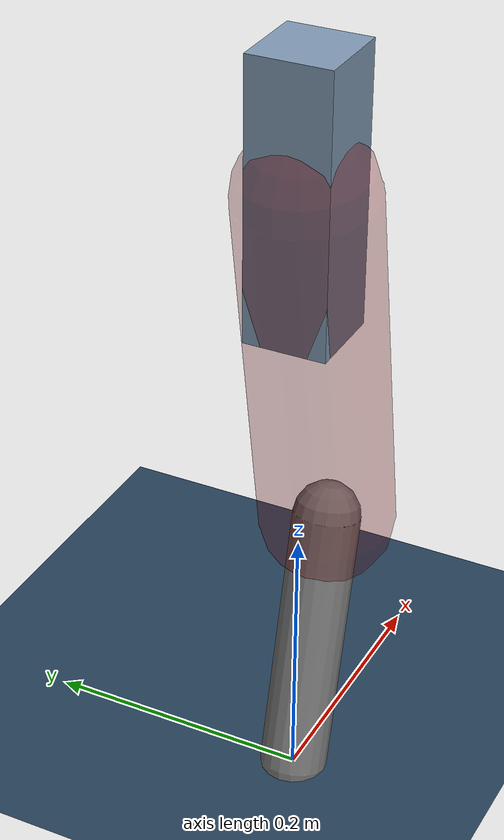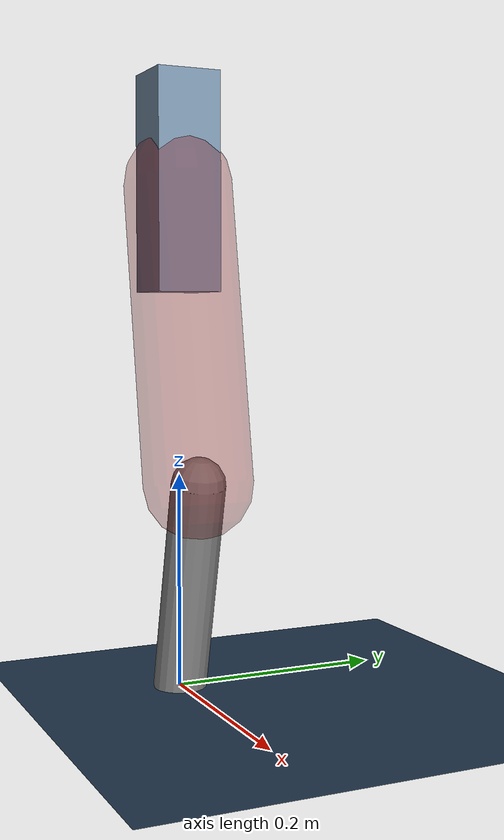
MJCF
<mujoco model="Hopper2D">
	<compiler inertiafromgeom="true" angle="radian" />
	<option timestep="0.001" integrator="implicit" cone="elliptic" solver="Newton" tolerance="1e-10" />

	<default>
		<geom contype="1" conaffinity="1" condim="3" friction="2 0.005 0.0001" solref="0.005 1" />
		<joint limited="true" damping="0.1" />
	</default>

	<asset>
		<texture name="skybox" type="skybox" builtin="gradient" rgb1=".4 .6 .8" rgb2="0 0 0" width="800" height="800" />
		<texture name="grid" type="2d" builtin="checker" rgb1=".1 .2 .3" rgb2=".2 .3 .4" width="300" height="300" mark="edge" markrgb=".2 .3 .4" />
		<material name="ground" texture="grid" texrepeat="1 1" texuniform="true" reflectance="0.1" />
		<material name="leg" rgba="0.5 0.6 0.7 1" />
	</asset>

	<worldbody>

		<geom name="floor" type="plane" size="5 5 0.25" material="ground" />

		<light directional="false" diffuse="0.8 0.8 0.8" specular="0.3 0.3 0.3" pos="0 0 2" dir="0 0 -1" />
		<light mode="targetbodycom" target="base" directional="false" diffuse="0.8 0.8 0.8" specular="0.3 0.3 0.3" pos="0 0 2" dir="0 0 -1" />

		<camera name="fixed" pos="0 -2 1" xyaxes="1 0 0 0 0 1" />
		<camera name="tracking" mode="trackcom" pos="0 -3 1" />

		<body name="root" pos="0 0 0.4697686525725427">
			<joint name="slide_x" type="slide" axis="1 0 0" range="-100 100" />
			<joint name="slide_z" type="slide" axis="0 0 1" range="0 10" />

			<body name="base" pos="0 0 0">
				<geom name="torso" type="box" size="0.03 0.03 0.1" mass="2.2720000000000002" material="leg" />

				<body name="link1" pos="0 0 0" euler="0 1.396956886981345 0">
					<joint type="hinge" axis="0 -1 0" pos="0 0 0" name="hinge1" limited="true" range="-3.14 3.14" stiffness="0" damping="0.1" />
					<geom name="thigh" type="capsule" fromto="0 0 0 0.2779613794047058 0 0" size="0.05" rgba="0.5 0 0 0.3" mass="0.9296995864522349" />

					<body name="link2" pos="0.2779613794047058 0 0" euler="0 0.41438799820447025 0">
						<joint type="hinge" axis="0 -1 0" pos="0 0 0" name="hinge2" limited="true" range="-3.14 3.14" stiffness="0" damping="0.1" />
						<geom name="shank" type="capsule" fromto="0 0 0 0.20180727316783692 0 0" size="0.025" mass="0.40242654585105325" />

					</body>
				</body>
			</body>
		</body>
	</worldbody>

	<actuator>
		<motor name="torque1" joint="hinge1" ctrlrange="-62.49708349013483 62.49708349013483" ctrllimited="true" gear="1" />
		<motor name="torque2" joint="hinge2" ctrlrange="-70.60652630318528 70.60652630318528" ctrllimited="true" gear="1" />
	</actuator>
</mujoco>
